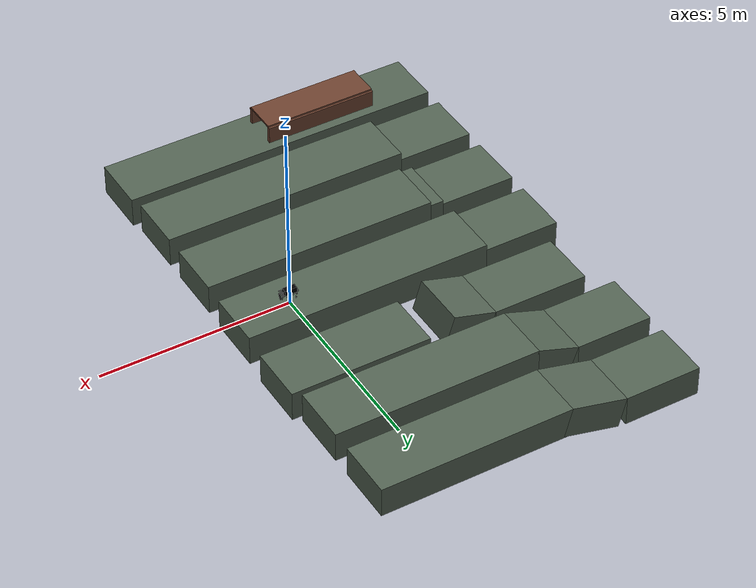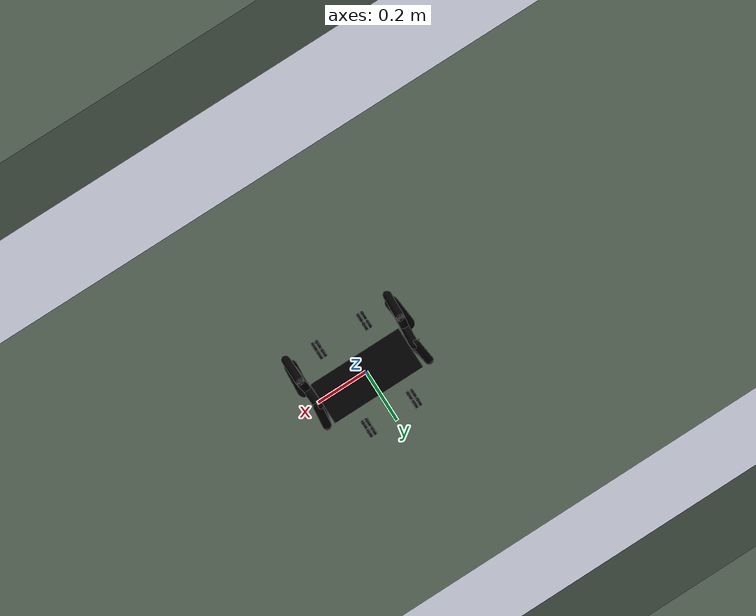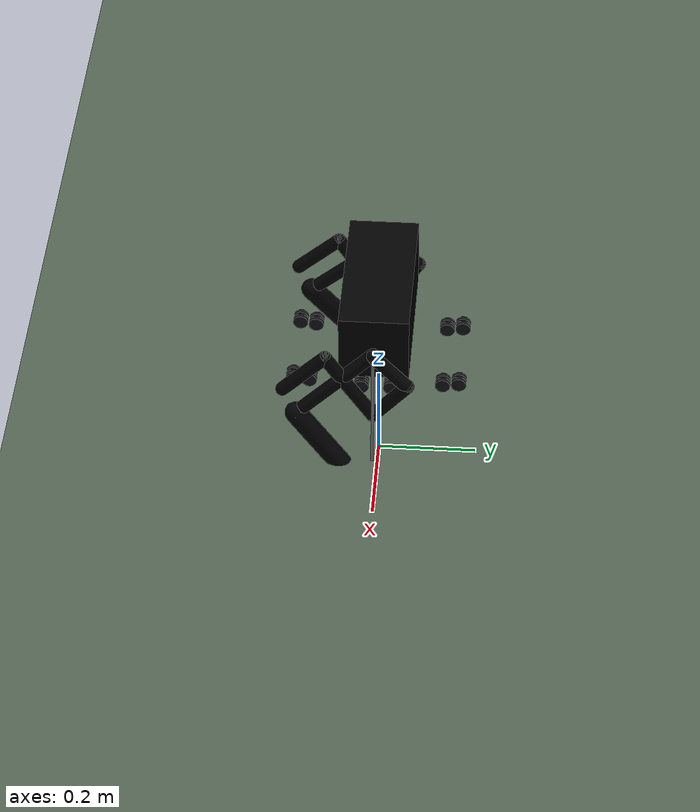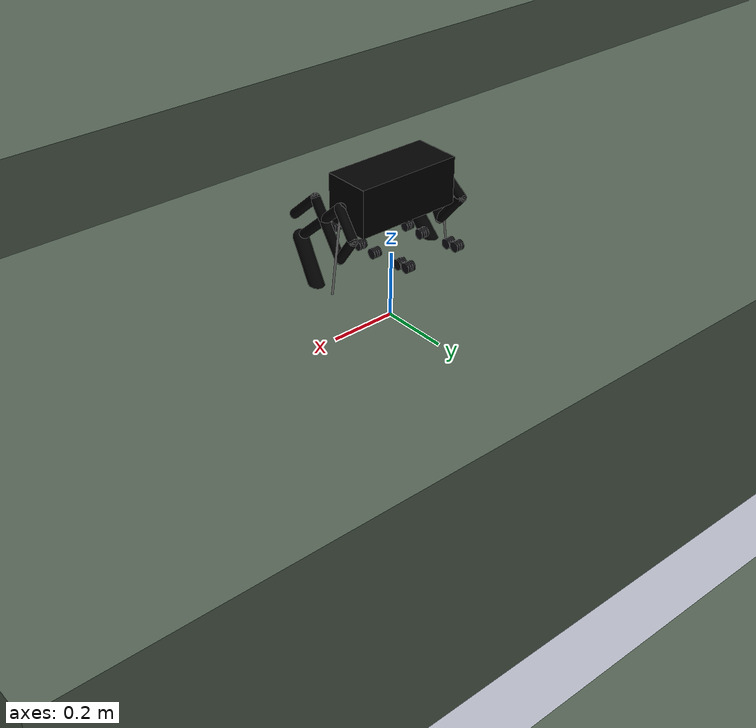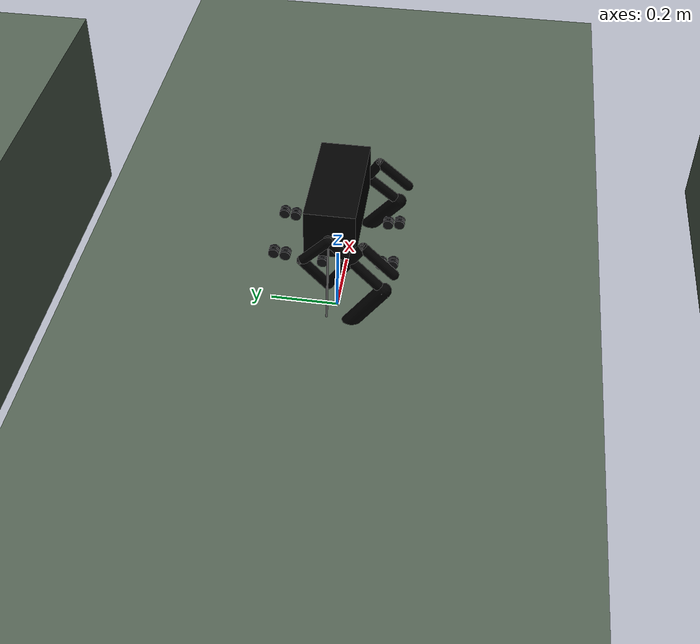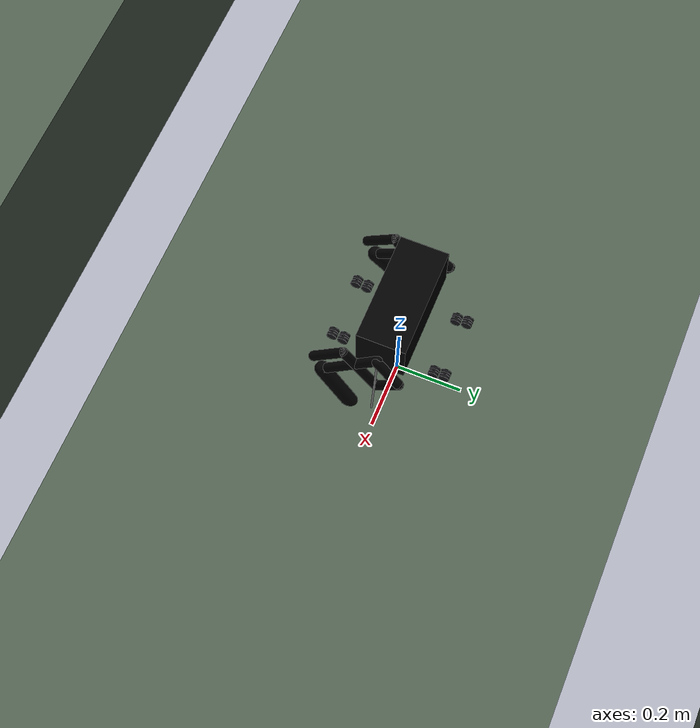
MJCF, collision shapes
<mujoco model="official_standard_ground">
  <compiler angle="radian" meshdir="meshes_mj" inertiafromgeom="auto" balanceinertia="true" />
  <statistic center="-4 0 0.35" extent="18" />
  <option timestep="0.001" gravity="0 0 -9.81" integrator="implicitfast" iterations="100" ls_iterations="50" />
  <visual>
    <headlight ambient="0.18 0.18 0.18" diffuse="0.40 0.40 0.40" specular="0.05 0.05 0.05" />
    <rgba haze="0.15 0.15 0.15 1" />
  </visual>
  <default>
    <joint damping="0.6" armature="0.01" />
    <geom margin="0.002" solimp="0.90 0.99 0.002" solref="0.008 1" />
  </default>
  <asset>
    <!-- Matte black ground material. -->
    <texture name="grid" type="2d" builtin="checker" width="512" height="512" rgb1=".1 .2 .3" rgb2=".2 .3 .4"/>
    <material name="ground_black_mat"  texture="grid" texrepeat="8 8" reflectance="0" />
    <mesh name="l_active_aluminum" file="l_active_aluminum.stl" scale="0.001 0.001 0.001" />
    <mesh name="l_long_aluminum" file="l_long_aluminum.stl" scale="0.001 0.001 0.001" />
    <mesh name="l_lower_aluminum" file="l_lower_aluminum.stl" scale="0.001 0.001 0.001" />
    <mesh name="l_node_aluminum" file="l_node_aluminum.stl" scale="0.001 0.001 0.001" />
    <mesh name="l_parallel_aluminum" file="l_parallel_aluminum.stl" scale="0.001 0.001 0.001" />
    <mesh name="l_upper_aluminum" file="l_upper_aluminum.stl" scale="0.001 0.001 0.001" />
    <mesh name="left_wheel_complete" file="left_wheel_complete.stl" scale="0.001 0.001 0.001" />
    <mesh name="r_active_aluminum" file="r_active_aluminum.stl" scale="0.001 0.001 0.001" />
    <mesh name="r_long_aluminum" file="r_long_aluminum.stl" scale="0.001 0.001 0.001" />
    <mesh name="r_lower_aluminum" file="r_lower_aluminum.stl" scale="0.001 0.001 0.001" />
    <mesh name="r_node_aluminum" file="r_node_aluminum.stl" scale="0.001 0.001 0.001" />
    <mesh name="r_parallel_aluminum" file="r_parallel_aluminum.stl" scale="0.001 0.001 0.001" />
    <mesh name="r_upper_aluminum" file="r_upper_aluminum.stl" scale="0.001 0.001 0.001" />
    <mesh name="right_wheel_complete" file="right_wheel_complete.stl" scale="0.001 0.001 0.001" />
    <mesh name="base_visual_aluminum_part1" file="base_visual_aluminum_part1.stl" scale="0.001 0.001 0.001" />
    <mesh name="base_visual_aluminum_part2" file="base_visual_aluminum_part2.stl" scale="0.001 0.001 0.001" />
    <mesh name="base_visual_aluminum_part3" file="base_visual_aluminum_part3.stl" scale="0.001 0.001 0.001" />
    <mesh name="base_visual_aluminum_part4" file="base_visual_aluminum_part4.stl" scale="0.001 0.001 0.001" />
    <mesh name="base_visual_aluminum_part5" file="base_visual_aluminum_part5.stl" scale="0.001 0.001 0.001" />
    <mesh name="base_visual_carbon" file="base_visual_carbon.stl" scale="0.001 0.001 0.001" />
    <mesh name="base_visual_plastic" file="base_visual_plastic.stl" scale="0.001 0.001 0.001" />
  </asset>
  <!--鎷撴墤缁撴瀯缁撴垚閾撅紝鍙涓や釜鍏宠妭鍋歝onnect-->
  <equality>
    <connect name="left_loop1" site1="left_node_site" site2="left_upper_site" solref="0.008 1" solimp="0.95 0.99 0.002 0.5 2" />
    <connect name="left_loop2" site1="left_parallel_site" site2="left_lower_site" solref="0.008 1" solimp="0.95 0.99 0.002 0.5 2" />
    <connect name="right_loop1" site1="right_node_site" site2="right_upper_site" solref="0.008 1" solimp="0.95 0.99 0.002 0.5 2" />
    <connect name="right_loop2" site1="right_parallel_site" site2="right_lower_site" solref="0.008 1" solimp="0.95 0.99 0.002 0.5 2" />
  </equality>
  <tendon>
    <!-- Passive spatial tendons measure hip-pivot to wheel-center leg length only. -->
    <spatial name="left_leg_length_tendon">
      <site site="left_leg_length_hip_site" />
      <site site="left_leg_length_wheel_site" />
    </spatial>
    <spatial name="right_leg_length_tendon">
      <site site="right_leg_length_hip_site" />
      <site site="right_leg_length_wheel_site" />
    </spatial>
  </tendon>
  <contact>
    <!-- Explicit self-contact pairs: wheel/leg travel is limited by the chassis. -->
    <pair name="left_wheel_to_base" geom1="base_collision" geom2="left_wheel_contact" />
    <pair name="right_wheel_to_base" geom1="base_collision" geom2="right_wheel_contact" />
    <pair name="left_leg_to_base" geom1="base_collision" geom2="left_lower_leg_collision" />
    <pair name="right_leg_to_base" geom1="base_collision" geom2="right_lower_leg_collision" />
    <pair name="left_long_to_base" geom1="base_collision" geom2="left_long_link_collision" />
    <pair name="right_long_to_base" geom1="base_collision" geom2="right_long_link_collision" />
    <pair name="left_active_to_lower" geom1="left_active_link_collision" geom2="left_lower_leg_collision" />
    <pair name="right_active_to_lower" geom1="right_active_link_collision" geom2="right_lower_leg_collision" />
    <pair name="left_long_to_lower" geom1="left_long_link_collision" geom2="left_lower_leg_collision" />
    <pair name="right_long_to_lower" geom1="right_long_link_collision" geom2="right_lower_leg_collision" />
    <pair name="left_long_to_upper" geom1="left_long_link_collision" geom2="left_upper_leg_collision" />
    <pair name="right_long_to_upper" geom1="right_long_link_collision" geom2="right_upper_leg_collision" />
    <pair name="left_parallel_to_upper" geom1="left_parallel_link_collision" geom2="left_upper_leg_collision" />
    <pair name="right_parallel_to_upper" geom1="right_parallel_link_collision" geom2="right_upper_leg_collision" />
  </contact>
  <worldbody>
    <light name="sun" pos="0 0 6" dir="0 0 -1" directional="true" diffuse="0.55 0.55 0.55" specular="0.05 0.05 0.05" />
    <!-- The inherited plane is used only during LQR trim projection. -->
    <geom name="ground" type="plane" pos="0 0 0" size="100.000 100.000 0.1" material="ground_black_mat" friction="1.100000000 0.050000000 0.010000000" contype="0" conaffinity="0" rgba="0 0 0 0" />
    <!-- support_* are collision surfaces; obstacle_* are non-support collisions. -->
    <!-- grade15: official ramp angle/height/run from geometry YAML. -->
    <geom name="support_grade15_lead" type="box" pos="-6.000000000 6.000000000 -0.400000000" size="1.000000000 0.750000000 0.400000000" friction="1.100000000 0.050000000 0.010000000" solref="0.150000000 1.000000000" contype="2" conaffinity="1" rgba="0.32 0.38 0.32 1" />
    <geom name="support_grade15_ramp" type="box" pos="-4.150062220 6.000000000 -0.186370331" size="0.772740661 0.750000000 0.400000000" friction="1.100000000 0.050000000 0.010000000" solref="0.150000000 1.000000000" contype="2" conaffinity="1" rgba="0.32 0.38 0.32 1" quat="0.991444861 0.000000000 -0.130526192 0.000000000" />
    <geom name="support_grade15_platform" type="box" pos="-1.007179677 6.000000000 0.000000000" size="2.500000000 0.750000000 0.400000000" friction="1.100000000 0.050000000 0.010000000" solref="0.150000000 1.000000000" contype="2" conaffinity="1" rgba="0.32 0.38 0.32 1" />
    <!-- grade20: official ramp angle/height/run from geometry YAML. -->
    <geom name="support_grade20_lead" type="box" pos="-6.000000000 4.000000000 -0.400000000" size="1.000000000 0.750000000 0.400000000" friction="1.100000000 0.050000000 0.010000000" solref="0.150000000 1.000000000" contype="2" conaffinity="1" rgba="0.32 0.38 0.32 1" />
    <geom name="support_grade20_ramp" type="box" pos="-4.313696335 4.000000000 -0.175877061" size="0.584761030 0.750000000 0.400000000" friction="1.100000000 0.050000000 0.010000000" solref="0.150000000 1.000000000" contype="2" conaffinity="1" rgba="0.32 0.38 0.32 1" quat="0.984807761 0.000000000 -0.173648132 0.000000000" />
    <geom name="support_grade20_platform" type="box" pos="-1.201008714 4.000000000 0.000000000" size="2.700000000 0.750000000 0.400000000" friction="1.100000000 0.050000000 0.010000000" solref="0.150000000 1.000000000" contype="2" conaffinity="1" rgba="0.32 0.38 0.32 1" />
    <!-- step150: official vertical rises; tread lengths are fixture-only. -->
    <geom name="support_step150_lead" type="box" pos="-6.000000000 0.000000000 -0.400000000" size="1.000000000 0.750000000 0.400000000" friction="1.100000000 0.050000000 0.010000000" solref="0.150000000 1.000000000" contype="2" conaffinity="1" rgba="0.32 0.38 0.32 1" />
    <geom name="support_step150_platform" type="box" pos="-1.750000000 0.000000000 -0.250000000" size="3.250000000 0.750000000 0.400000000" friction="1.100000000 0.050000000 0.010000000" solref="0.150000000 1.000000000" contype="2" conaffinity="1" rgba="0.32 0.38 0.32 1" />
    <!-- stair2x100: official vertical rises; tread lengths are fixture-only. -->
    <geom name="support_stair2x100_lead" type="box" pos="-6.000000000 -2.000000000 -0.400000000" size="1.000000000 0.750000000 0.400000000" friction="1.100000000 0.050000000 0.010000000" solref="0.150000000 1.000000000" contype="2" conaffinity="1" rgba="0.32 0.38 0.32 1" />
    <geom name="support_stair2x100_lower" type="box" pos="-4.825000000 -2.000000000 -0.300000000" size="0.175000000 0.750000000 0.400000000" friction="1.100000000 0.050000000 0.010000000" solref="0.150000000 1.000000000" contype="2" conaffinity="1" rgba="0.32 0.38 0.32 1" />
    <geom name="support_stair2x100_upper" type="box" pos="-1.575000000 -2.000000000 -0.200000000" size="3.075000000 0.750000000 0.400000000" friction="1.100000000 0.050000000 0.010000000" solref="0.150000000 1.000000000" contype="2" conaffinity="1" rgba="0.32 0.38 0.32 1" />
    <!-- step200_lab: official vertical rises; tread lengths are fixture-only. -->
    <geom name="support_step200_lab_lead" type="box" pos="-6.000000000 -4.000000000 -0.400000000" size="1.000000000 0.750000000 0.400000000" friction="1.100000000 0.050000000 0.010000000" solref="0.150000000 1.000000000" contype="2" conaffinity="1" rgba="0.32 0.38 0.32 1" />
    <geom name="support_step200_lab_platform" type="box" pos="-1.750000000 -4.000000000 -0.200000000" size="3.250000000 0.750000000 0.400000000" friction="1.100000000 0.050000000 0.010000000" solref="0.150000000 1.000000000" contype="2" conaffinity="1" rgba="0.32 0.38 0.32 1" />
    <!-- fly17: official ramp angle/height/run from geometry YAML. -->
    <geom name="support_fly17_lead" type="box" pos="-5.250000000 2.000000000 -0.400000000" size="1.250000000 0.750000000 0.400000000" friction="1.100000000 0.050000000 0.010000000" solref="0.150000000 1.000000000" contype="2" conaffinity="1" rgba="0.32 0.38 0.32 1" />
    <geom name="support_fly17_ramp" type="box" pos="-3.310652110 2.000000000 -0.207521902" size="0.598553133 0.750000000 0.400000000" friction="1.100000000 0.050000000 0.010000000" solref="0.150000000 1.000000000" contype="2" conaffinity="1" rgba="0.32 0.38 0.32 1" quat="0.989015863 0.000000000 -0.147809411 0.000000000" />
    <geom name="support_fly17_landing" type="box" pos="-0.355201584 2.000000000 -0.400000000" size="1.850000000 0.750000000 0.400000000" friction="1.100000000 0.050000000 0.010000000" solref="0.150000000 1.000000000" contype="2" conaffinity="1" rgba="0.32 0.38 0.32 1" />
    <!-- Doghole roof/walls are true collision obstacles, not hfield support. -->
    <geom name="support_doghole_floor" type="box" pos="-2.750000000 -6.000000000 -0.400000000" size="4.250000000 0.750000000 0.400000000" friction="1.100000000 0.050000000 0.010000000" solref="0.150000000 1.000000000" contype="2" conaffinity="1" rgba="0.32 0.38 0.32 1" />
    <geom name="obstacle_doghole_roof" type="box" pos="-4.000000000 -6.000000000 0.475000000" size="1.500000000 0.450000000 0.025000000" friction="1.100000000 0.050000000 0.010000000" solref="0.150000000 1.000000000" contype="2" conaffinity="5" rgba="0.42 0.25 0.18 1" margin="0"/>
    <geom name="obstacle_doghole_left_wall" type="box" pos="-4.000000000 -6.450000000 0.200000000" size="1.500000000 0.050000000 0.250000000" friction="1.100000000 0.050000000 0.010000000" solref="0.150000000 1.000000000" contype="2" conaffinity="5" rgba="0.42 0.25 0.18 1" margin="0"/>
    <geom name="obstacle_doghole_right_wall" type="box" pos="-4.000000000 -5.550000000 0.200000000" size="1.500000000 0.050000000 0.250000000" friction="1.100000000 0.050000000 0.010000000" solref="0.150000000 1.000000000" contype="2" conaffinity="5" rgba="0.42 0.25 0.18 1" margin="0"/>
    <camera name="official_follow_camera" mode="trackcom" target="robot" pos="-2.8 -2.8 1.6" fovy="55" />
    <body name="robot" pos="0 0 0.400" quat="0.70710678 0.70710678 0 0">
      <freejoint name="robot_free" />
      <!--6DOF瀹炵幇鐩稿鑵块儴杞姩-->
      <inertial pos="-0.0052237 0.1277931 -0.0055563" mass="16.2270647" fullinertia="0.3691035 0.5973735 0.3420952 -0.0174008 0.0042838 -0.0518328" />
      <!-- IMU reference frame, rigidly fixed at the robot body origin. -->
      <site name="imu_site" pos="0 0 0" size="0.006" rgba="0.10 0.65 1 0.45" />
      <!-- Hip-pivot endpoints for direct left/right leg-length measurement. -->
      <site name="left_leg_length_hip_site" pos="0.177500 0.000024 -0.000014" size="0.004" rgba="0.20 1 0.80 0.45" />
      <site name="right_leg_length_hip_site" pos="-0.177500 0.000024 -0.000014" size="0.004" rgba="1 0.55 0.20 0.45" />
      <!-- Dynamic collision group 1 only collides with the ground group 2. -->
      <geom name="base_contact" type="sphere" pos="0 0 0" size="0.045" mass="0" friction="0.80 0.005 0.0001" contype="4" conaffinity="0" rgba="0 0 0 0" />
      <!-- Chassis collision proxy used by explicit wheel/leg self-contact pairs. -->
      <geom name="base_collision" type="box" pos="0 0 0" size="0.160 0.070 0.070" mass="0" contype="4" conaffinity="0" rgba="0 0 0 0" margin="0"/>
      <geom type="mesh" mesh="base_visual_aluminum_part1" mass="0" rgba="0.74 0.76 0.79 1" contype="0" conaffinity="0" group="0" />
      <geom type="mesh" mesh="base_visual_aluminum_part2" mass="0" rgba="0.74 0.76 0.79 1" contype="0" conaffinity="0" group="0" />
      <geom type="mesh" mesh="base_visual_aluminum_part3" mass="0" rgba="0.74 0.76 0.79 1" contype="0" conaffinity="0" group="0" />
      <geom type="mesh" mesh="base_visual_aluminum_part4" mass="0" rgba="0.74 0.76 0.79 1" contype="0" conaffinity="0" group="0" />
      <geom type="mesh" mesh="base_visual_aluminum_part5" mass="0" rgba="0.74 0.76 0.79 1" contype="0" conaffinity="0" group="0" />
      <geom type="mesh" mesh="base_visual_carbon" mass="0" rgba="0.08 0.08 0.09 1" contype="0" conaffinity="0" group="0" />
      <geom type="mesh" mesh="base_visual_plastic" mass="0" rgba="0.16 0.16 0.18 1" contype="0" conaffinity="0" group="0" />
      <body name="left_active_link" pos="0.181750 0.000024 -0.000014">
        <joint name="left_active_link_pitch" type="hinge" axis="1 0 0" range="-2.60 2.60" damping="0.08" stiffness="0" springref="0" />
        <geom name="left_active_link_collision" type="capsule" fromto="0 0 0 0.011750 -0.064318 -0.069234" size="0.014" mass="0" contype="4" conaffinity="0" rgba="0 0 0 0" />
        <geom type="mesh" mesh="l_active_aluminum" density="594.0" rgba="0.74 0.76 0.79 1" contype="0" conaffinity="0" group="0" />
        <body name="left_long_link" pos="0.011750 -0.064318 -0.069234">
          <joint name="left_long_link_pitch" type="hinge" axis="1 0 0" range="-2.60 2.60" damping="0.08" stiffness="0" springref="0" />
          <geom name="left_long_link_collision" type="capsule" fromto="0 0 0 -0.012250 -0.088682 0.069231" size="0.014" mass="0" contype="4" conaffinity="0" rgba="0 0 0 0" />
          <geom type="mesh" mesh="l_long_aluminum" density="594.0" rgba="0.74 0.76 0.79 1" contype="0" conaffinity="0" group="0" />
          <body name="left_node_link" pos="-0.012250 -0.088682 0.069231">
            <joint name="left_node_link_pitch" type="hinge" axis="1 0 0" range="-2.60 2.60" damping="0.08" stiffness="0" springref="0" />
            <geom name="left_node_link_collision" type="capsule" fromto="0 0 0 0.005625 0.148520 0.094605" size="0.014" mass="0" contype="4" conaffinity="0" rgba="0 0 0 0" />
            <geom type="mesh" mesh="l_node_aluminum" pos="0.005625 0.148520 0.094605" density="594.0" rgba="0.74 0.76 0.79 1" contype="0" conaffinity="0" group="0" />
            <site name="left_node_site" pos="0.005250 0.088675 0.069231" size="0.006" rgba="0.10 1 0.10 1" />
            <body name="left_parallel_link" pos="0.005625 0.148520 0.094605">
              <joint name="left_parallel_link_pitch" type="hinge" axis="1 0 0" range="-2.60 2.60" damping="0.08" stiffness="0" springref="0" />
              <geom name="left_parallel_link_collision" type="capsule" fromto="0 0 0 0.006625 -0.078620 0.084618" size="0.014" mass="0" contype="4" conaffinity="0" rgba="0 0 0 0" />
              <geom type="mesh" mesh="l_parallel_aluminum" pos="0.006625 -0.078620 0.084618" density="594.0" rgba="0.74 0.76 0.79 1" contype="0" conaffinity="0" group="0" />
              <site name="left_parallel_site" pos="0.006625 -0.078620 0.084618" size="0.006" rgba="1 0.90 0 1" />
            </body>
          </body>
        </body>
      </body>
      <body name="left_upper_leg" pos="0.177500 0.000024 -0.000014">
        <joint name="left_hip_pitch" type="hinge" axis="-1 0 0" range="-3.10 3.10" damping="0.08" stiffness="0" springref="0" />
        <geom name="left_upper_leg_collision" type="capsule" fromto="0 0 0 0.017500 -0.142940 0.153840" size="0.014" mass="0" contype="4" conaffinity="0" rgba="0 0 0 0" />
        <geom type="mesh" mesh="l_upper_aluminum" density="594.0" rgba="0.74 0.76 0.79 1" contype="0" conaffinity="0" group="0" />
        <site name="left_upper_site" pos="0.009000 -0.064325 0.069228" size="0.009" rgba="1 0 1 0.55" />
        <body name="left_lower_leg" pos="0.017500 -0.142940 0.153840">
          <joint name="left_knee_pitch" type="hinge" axis="1 0 0" range="-2.50 2.50" damping="0.10" stiffness="0" springref="0" />
          <!-- Lower-leg sweep proxy for the explicit chassis contact pair. -->
          <geom name="left_lower_leg_collision" type="capsule" fromto="0 0 0 0.025489 -0.197014 -0.153817" size="0.022" mass="0" contype="4" conaffinity="0" rgba="0 0 0 0" />
          <geom type="mesh" mesh="l_lower_aluminum" density="594.0" rgba="0.74 0.76 0.79 1" contype="0" conaffinity="0" group="0" />
          <site name="left_lower_site" pos="-0.001500 0.059840 0.025380" size="0.009" rgba="1 0.25 0.10 0.55" />
          <body name="left_wheel" pos="0.025489 -0.197014 -0.153817">
            <joint name="left_wheel_spin" type="hinge" axis="1 0 0" damping="0.01" />
            <site name="left_leg_length_wheel_site" pos="0 0 0" size="0.004" rgba="0.20 1 0.80 0.45" />
            <geom type="mesh" mesh="left_wheel_complete" density="594.0" rgba="0.74 0.76 0.79 1" contype="0" conaffinity="0" group="0" />
            <geom name="left_wheel_contact" type="cylinder" size="0.060 0.0165" quat="0.70710678 0 0.70710678 0" mass="0" friction="1.10 0.005 0.0001" condim="3" contype="1" conaffinity="2" rgba="0 0 0 0" />
          </body>
        </body>
      </body>
      <body name="right_active_link" pos="-0.181750 0.000024 -0.000014">
        <joint name="right_active_link_pitch" type="hinge" axis="1 0 0" range="-2.60 2.60" damping="0.08" stiffness="0" springref="0" />
        <geom name="right_active_link_collision" type="capsule" fromto="0 0 0 -0.011750 -0.064318 -0.069234" size="0.014" mass="0" contype="4" conaffinity="0" rgba="0 0 0 0" />
        <geom type="mesh" mesh="r_active_aluminum" density="594.0" rgba="0.74 0.76 0.79 1" contype="0" conaffinity="0" group="0" />
        <body name="right_long_link" pos="-0.011750 -0.064318 -0.069234">
          <joint name="right_long_link_pitch" type="hinge" axis="-1 0 0" range="-2.60 2.60" damping="0.08" stiffness="0" springref="0" />
          <geom name="right_long_link_collision" type="capsule" fromto="0 0 0 0.012250 -0.088682 0.069231" size="0.014" mass="0" contype="4" conaffinity="0" rgba="0 0 0 0" />
          <geom type="mesh" mesh="r_long_aluminum" density="594.0" rgba="0.74 0.76 0.79 1" contype="0" conaffinity="0" group="0" />
          <body name="right_node_link" pos="0.012250 -0.088682 0.069231">
            <joint name="right_node_link_pitch" type="hinge" axis="-1 0 0" range="-2.60 2.60" damping="0.08" stiffness="0" springref="0" />
            <geom name="right_node_link_collision" type="capsule" fromto="0 0 0 -0.005625 0.148520 0.094605" size="0.014" mass="0" contype="4" conaffinity="0" rgba="0 0 0 0" />
            <geom type="mesh" mesh="r_node_aluminum" pos="-0.005625 0.148520 0.094605" density="594.0" rgba="0.74 0.76 0.79 1" contype="0" conaffinity="0" group="0" />
            <site name="right_node_site" pos="-0.005250 0.088675 0.069231" size="0.006" rgba="1 0.90 0 1" />
            <body name="right_parallel_link" pos="-0.005625 0.148520 0.094605">
              <joint name="right_parallel_link_pitch" type="hinge" axis="-1 0 0" range="-2.60 2.60" damping="0.08" stiffness="0" springref="0" />
              <geom name="right_parallel_link_collision" type="capsule" fromto="0 0 0 -0.006625 -0.078620 0.084618" size="0.014" mass="0" contype="4" conaffinity="0" rgba="0 0 0 0" />
              <geom type="mesh" mesh="r_parallel_aluminum" pos="-0.006625 -0.078620 0.084618" density="594.0" rgba="0.74 0.76 0.79 1" contype="0" conaffinity="0" group="0" />
              <site name="right_parallel_site" pos="-0.006625 -0.078620 0.084618" size="0.006" rgba="0.10 1 0 1" />
            </body>
          </body>
        </body>
      </body>
      <body name="right_upper_leg" pos="-0.177500 0.000024 -0.000014">
        <joint name="right_hip_pitch" type="hinge" axis="1 0 0" range="-3.10 3.10" damping="0.08" stiffness="0" springref="0" />
        <geom name="right_upper_leg_collision" type="capsule" fromto="0 0 0 -0.017500 -0.142940 0.153840" size="0.014" mass="0" contype="4" conaffinity="0" rgba="0 0 0 0" />
        <geom type="mesh" mesh="r_upper_aluminum" density="594.0" rgba="0.74 0.76 0.79 1" contype="0" conaffinity="0" group="0" />
        <site name="right_upper_site" pos="-0.009000 -0.064325 0.069228" size="0.009" rgba="1 0 1 0.55" />
        <body name="right_lower_leg" pos="-0.017500 -0.142940 0.153840">
          <joint name="right_knee_pitch" type="hinge" axis="-1 0 0" range="-2.50 2.50" damping="0.10" stiffness="0" springref="0" />
          <!-- Lower-leg sweep proxy for the explicit chassis contact pair. -->
          <geom name="right_lower_leg_collision" type="capsule" fromto="0 0 0 -0.025511 -0.197077 -0.153795" size="0.022" mass="0" contype="4" conaffinity="0" rgba="0 0 0 0" />
          <geom type="mesh" mesh="r_lower_aluminum" density="594.0" rgba="0.74 0.76 0.79 1" contype="0" conaffinity="0" group="0" />
          <site name="right_lower_site" pos="0.001500 0.059840 0.025380" size="0.009" rgba="1 0.25 0.10 0.55" />
          <body name="right_wheel" pos="-0.025511 -0.197077 -0.153795">
            <joint name="right_wheel_spin" type="hinge" axis="1 0 0" damping="0.01" />
            <site name="right_leg_length_wheel_site" pos="0 0 0" size="0.004" rgba="1 0.55 0.20 0.45" />
            <geom type="mesh" mesh="right_wheel_complete" density="594.0" rgba="0.74 0.76 0.79 1" contype="0" conaffinity="0" group="0" />
            <geom name="right_wheel_contact" type="cylinder" size="0.060 0.0165" quat="0.70710678 0 0.70710678 0" mass="0" friction="1.10 0.005 0.0001" condim="3" contype="1" conaffinity="2" rgba="0 0 0 0" />
          </body>
        </body>
      </body>
      <!-- GUIDE_WHEEL_TRAINING_BEGIN -->
      <!-- Passive lower 30x9 mm guide rollers; no actuator or public sensor. -->
      <body name="guide_wheel_lower_right_01" pos="-0.0950001 -0.1399738 -0.1346828">
        <joint name="guide_wheel_lower_right_01_spin" type="hinge" axis="1.0000000 0.0000000 0.0000000" damping="0.0001500" armature="0.0000000" />
        <site name="guide_wheel_lower_right_01_site" pos="0 0 0" size="0.004" rgba="0.0700000 0.0700000 0.0800000 1.0000000" />
        <geom name="guide_wheel_lower_right_01_contact" type="cylinder" size="0.0150000 0.0045000" quat="0.7071068 0.0000000 0.7071068 0.0000000" density="2588.0000000" friction="1.1000000 0.0050000 0.0001000" condim="3" contype="1" conaffinity="2" rgba="0.0700000 0.0700000 0.0800000 1.0000000" />
      </body>
      <body name="guide_wheel_lower_right_02" pos="-0.0800001 -0.1357210 -0.1670853">
        <joint name="guide_wheel_lower_right_02_spin" type="hinge" axis="1.0000000 0.0000000 0.0000000" damping="0.0001500" armature="0.0000000" />
        <site name="guide_wheel_lower_right_02_site" pos="0 0 0" size="0.004" rgba="0.0700000 0.0700000 0.0800000 1.0000000" />
        <geom name="guide_wheel_lower_right_02_contact" type="cylinder" size="0.0150000 0.0045000" quat="0.7071068 0.0000000 0.7071068 0.0000000" density="2588.0000000" friction="1.1000000 0.0050000 0.0001000" condim="3" contype="1" conaffinity="2" rgba="0.0700000 0.0700000 0.0800000 1.0000000" />
      </body>
      <body name="guide_wheel_lower_right_03" pos="-0.0950001 -0.1357210 -0.1669864">
        <joint name="guide_wheel_lower_right_03_spin" type="hinge" axis="1.0000000 0.0000000 0.0000000" damping="0.0001500" armature="0.0000000" />
        <site name="guide_wheel_lower_right_03_site" pos="0 0 0" size="0.004" rgba="0.0700000 0.0700000 0.0800000 1.0000000" />
        <geom name="guide_wheel_lower_right_03_contact" type="cylinder" size="0.0150000 0.0045000" quat="0.7071068 0.0000000 0.7071068 0.0000000" density="2588.0000000" friction="1.1000000 0.0050000 0.0001000" condim="3" contype="1" conaffinity="2" rgba="0.0700000 0.0700000 0.0800000 1.0000000" />
      </body>
      <body name="guide_wheel_lower_right_04" pos="-0.0800001 -0.1400231 -0.1347281">
        <joint name="guide_wheel_lower_right_04_spin" type="hinge" axis="1.0000000 0.0000000 0.0000000" damping="0.0001500" armature="0.0000000" />
        <site name="guide_wheel_lower_right_04_site" pos="0 0 0" size="0.004" rgba="0.0700000 0.0700000 0.0800000 1.0000000" />
        <geom name="guide_wheel_lower_right_04_contact" type="cylinder" size="0.0150000 0.0045000" quat="0.7071068 0.0000000 0.7071068 0.0000000" density="2588.0000000" friction="1.1000000 0.0050000 0.0001000" condim="3" contype="1" conaffinity="2" rgba="0.0700000 0.0700000 0.0800000 1.0000000" />
      </body>
      <body name="guide_wheel_lower_left_01" pos="0.0949999 -0.1357210 -0.1669864">
        <joint name="guide_wheel_lower_left_01_spin" type="hinge" axis="1.0000000 0.0000000 0.0000000" damping="0.0001500" armature="0.0000000" />
        <site name="guide_wheel_lower_left_01_site" pos="0 0 0" size="0.004" rgba="0.0700000 0.0700000 0.0800000 1.0000000" />
        <geom name="guide_wheel_lower_left_01_contact" type="cylinder" size="0.0150000 0.0045000" quat="0.7071068 0.0000000 0.7071068 0.0000000" density="2588.0000000" friction="1.1000000 0.0050000 0.0001000" condim="3" contype="1" conaffinity="2" rgba="0.0700000 0.0700000 0.0800000 1.0000000" />
      </body>
      <body name="guide_wheel_lower_left_02" pos="0.0799999 -0.1357210 -0.1670853">
        <joint name="guide_wheel_lower_left_02_spin" type="hinge" axis="1.0000000 0.0000000 0.0000000" damping="0.0001500" armature="0.0000000" />
        <site name="guide_wheel_lower_left_02_site" pos="0 0 0" size="0.004" rgba="0.0700000 0.0700000 0.0800000 1.0000000" />
        <geom name="guide_wheel_lower_left_02_contact" type="cylinder" size="0.0150000 0.0045000" quat="0.7071068 0.0000000 0.7071068 0.0000000" density="2588.0000000" friction="1.1000000 0.0050000 0.0001000" condim="3" contype="1" conaffinity="2" rgba="0.0700000 0.0700000 0.0800000 1.0000000" />
      </body>
      <body name="guide_wheel_lower_left_03" pos="0.0949999 -0.1399738 -0.1346828">
        <joint name="guide_wheel_lower_left_03_spin" type="hinge" axis="1.0000000 0.0000000 0.0000000" damping="0.0001500" armature="0.0000000" />
        <site name="guide_wheel_lower_left_03_site" pos="0 0 0" size="0.004" rgba="0.0700000 0.0700000 0.0800000 1.0000000" />
        <geom name="guide_wheel_lower_left_03_contact" type="cylinder" size="0.0150000 0.0045000" quat="0.7071068 0.0000000 0.7071068 0.0000000" density="2588.0000000" friction="1.1000000 0.0050000 0.0001000" condim="3" contype="1" conaffinity="2" rgba="0.0700000 0.0700000 0.0800000 1.0000000" />
      </body>
      <body name="guide_wheel_lower_left_04" pos="0.0799999 -0.1400231 -0.1347281">
        <joint name="guide_wheel_lower_left_04_spin" type="hinge" axis="1.0000000 0.0000000 0.0000000" damping="0.0001500" armature="0.0000000" />
        <site name="guide_wheel_lower_left_04_site" pos="0 0 0" size="0.004" rgba="0.0700000 0.0700000 0.0800000 1.0000000" />
        <geom name="guide_wheel_lower_left_04_contact" type="cylinder" size="0.0150000 0.0045000" quat="0.7071068 0.0000000 0.7071068 0.0000000" density="2588.0000000" friction="1.1000000 0.0050000 0.0001000" condim="3" contype="1" conaffinity="2" rgba="0.0700000 0.0700000 0.0800000 1.0000000" />
      </body>
      <body name="guide_wheel_lower_left_05" pos="0.0949999 -0.1399738 0.1346520">
        <joint name="guide_wheel_lower_left_05_spin" type="hinge" axis="1.0000000 0.0000000 0.0000000" damping="0.0001500" armature="0.0000000" />
        <site name="guide_wheel_lower_left_05_site" pos="0 0 0" size="0.004" rgba="0.0700000 0.0700000 0.0800000 1.0000000" />
        <geom name="guide_wheel_lower_left_05_contact" type="cylinder" size="0.0150000 0.0045000" quat="0.7071068 0.0000000 0.7071068 0.0000000" density="2588.0000000" friction="1.1000000 0.0050000 0.0001000" condim="3" contype="1" conaffinity="2" rgba="0.0700000 0.0700000 0.0800000 1.0000000" />
      </body>
      <body name="guide_wheel_lower_left_06" pos="0.0949999 -0.1357210 0.1669556">
        <joint name="guide_wheel_lower_left_06_spin" type="hinge" axis="1.0000000 0.0000000 0.0000000" damping="0.0001500" armature="0.0000000" />
        <site name="guide_wheel_lower_left_06_site" pos="0 0 0" size="0.004" rgba="0.0700000 0.0700000 0.0800000 1.0000000" />
        <geom name="guide_wheel_lower_left_06_contact" type="cylinder" size="0.0150000 0.0045000" quat="0.7071068 0.0000000 0.7071068 0.0000000" density="2588.0000000" friction="1.1000000 0.0050000 0.0001000" condim="3" contype="1" conaffinity="2" rgba="0.0700000 0.0700000 0.0800000 1.0000000" />
      </body>
      <body name="guide_wheel_lower_left_07" pos="0.0799999 -0.1357210 0.1670545">
        <joint name="guide_wheel_lower_left_07_spin" type="hinge" axis="1.0000000 0.0000000 0.0000000" damping="0.0001500" armature="0.0000000" />
        <site name="guide_wheel_lower_left_07_site" pos="0 0 0" size="0.004" rgba="0.0700000 0.0700000 0.0800000 1.0000000" />
        <geom name="guide_wheel_lower_left_07_contact" type="cylinder" size="0.0150000 0.0045000" quat="0.7071068 0.0000000 0.7071068 0.0000000" density="2588.0000000" friction="1.1000000 0.0050000 0.0001000" condim="3" contype="1" conaffinity="2" rgba="0.0700000 0.0700000 0.0800000 1.0000000" />
      </body>
      <body name="guide_wheel_lower_left_08" pos="0.0799999 -0.1400231 0.1346973">
        <joint name="guide_wheel_lower_left_08_spin" type="hinge" axis="1.0000000 0.0000000 0.0000000" damping="0.0001500" armature="0.0000000" />
        <site name="guide_wheel_lower_left_08_site" pos="0 0 0" size="0.004" rgba="0.0700000 0.0700000 0.0800000 1.0000000" />
        <geom name="guide_wheel_lower_left_08_contact" type="cylinder" size="0.0150000 0.0045000" quat="0.7071068 0.0000000 0.7071068 0.0000000" density="2588.0000000" friction="1.1000000 0.0050000 0.0001000" condim="3" contype="1" conaffinity="2" rgba="0.0700000 0.0700000 0.0800000 1.0000000" />
      </body>
      <body name="guide_wheel_lower_right_05" pos="-0.0800001 -0.1357210 0.1670545">
        <joint name="guide_wheel_lower_right_05_spin" type="hinge" axis="1.0000000 0.0000000 0.0000000" damping="0.0001500" armature="0.0000000" />
        <site name="guide_wheel_lower_right_05_site" pos="0 0 0" size="0.004" rgba="0.0700000 0.0700000 0.0800000 1.0000000" />
        <geom name="guide_wheel_lower_right_05_contact" type="cylinder" size="0.0150000 0.0045000" quat="0.7071068 0.0000000 0.7071068 0.0000000" density="2588.0000000" friction="1.1000000 0.0050000 0.0001000" condim="3" contype="1" conaffinity="2" rgba="0.0700000 0.0700000 0.0800000 1.0000000" />
      </body>
      <body name="guide_wheel_lower_right_06" pos="-0.0950001 -0.1357210 0.1669556">
        <joint name="guide_wheel_lower_right_06_spin" type="hinge" axis="1.0000000 0.0000000 0.0000000" damping="0.0001500" armature="0.0000000" />
        <site name="guide_wheel_lower_right_06_site" pos="0 0 0" size="0.004" rgba="0.0700000 0.0700000 0.0800000 1.0000000" />
        <geom name="guide_wheel_lower_right_06_contact" type="cylinder" size="0.0150000 0.0045000" quat="0.7071068 0.0000000 0.7071068 0.0000000" density="2588.0000000" friction="1.1000000 0.0050000 0.0001000" condim="3" contype="1" conaffinity="2" rgba="0.0700000 0.0700000 0.0800000 1.0000000" />
      </body>
      <body name="guide_wheel_lower_right_07" pos="-0.0800001 -0.1400231 0.1346973">
        <joint name="guide_wheel_lower_right_07_spin" type="hinge" axis="1.0000000 0.0000000 0.0000000" damping="0.0001500" armature="0.0000000" />
        <site name="guide_wheel_lower_right_07_site" pos="0 0 0" size="0.004" rgba="0.0700000 0.0700000 0.0800000 1.0000000" />
        <geom name="guide_wheel_lower_right_07_contact" type="cylinder" size="0.0150000 0.0045000" quat="0.7071068 0.0000000 0.7071068 0.0000000" density="2588.0000000" friction="1.1000000 0.0050000 0.0001000" condim="3" contype="1" conaffinity="2" rgba="0.0700000 0.0700000 0.0800000 1.0000000" />
      </body>
      <body name="guide_wheel_lower_right_08" pos="-0.0950001 -0.1399738 0.1346520">
        <joint name="guide_wheel_lower_right_08_spin" type="hinge" axis="1.0000000 0.0000000 0.0000000" damping="0.0001500" armature="0.0000000" />
        <site name="guide_wheel_lower_right_08_site" pos="0 0 0" size="0.004" rgba="0.0700000 0.0700000 0.0800000 1.0000000" />
        <geom name="guide_wheel_lower_right_08_contact" type="cylinder" size="0.0150000 0.0045000" quat="0.7071068 0.0000000 0.7071068 0.0000000" density="2588.0000000" friction="1.1000000 0.0050000 0.0001000" condim="3" contype="1" conaffinity="2" rgba="0.0700000 0.0700000 0.0800000 1.0000000" />
      </body>
      <body name="guide_wheel_lower_left_09" pos="0.0779999 -0.1534738 -0.0300649">
        <joint name="guide_wheel_lower_left_09_spin" type="hinge" axis="1.0000000 0.0000000 0.0000000" damping="0.0001500" armature="0.0000000" />
        <site name="guide_wheel_lower_left_09_site" pos="0 0 0" size="0.004" rgba="0.0700000 0.0700000 0.0800000 1.0000000" />
        <geom name="guide_wheel_lower_left_09_contact" type="cylinder" size="0.0150000 0.0045000" quat="0.7071068 0.0000000 0.7071068 0.0000000" density="2588.0000000" friction="1.1000000 0.0050000 0.0001000" condim="3" contype="1" conaffinity="2" rgba="0.0700000 0.0700000 0.0800000 1.0000000" />
      </body>
      <body name="guide_wheel_lower_left_10" pos="0.0929999 -0.1534738 -0.0299659">
        <joint name="guide_wheel_lower_left_10_spin" type="hinge" axis="1.0000000 0.0000000 0.0000000" damping="0.0001500" armature="0.0000000" />
        <site name="guide_wheel_lower_left_10_site" pos="0 0 0" size="0.004" rgba="0.0700000 0.0700000 0.0800000 1.0000000" />
        <geom name="guide_wheel_lower_left_10_contact" type="cylinder" size="0.0150000 0.0045000" quat="0.7071068 0.0000000 0.7071068 0.0000000" density="2588.0000000" friction="1.1000000 0.0050000 0.0001000" condim="3" contype="1" conaffinity="2" rgba="0.0700000 0.0700000 0.0800000 1.0000000" />
      </body>
      <body name="guide_wheel_lower_left_11" pos="0.0929999 -0.1534738 0.0300341">
        <joint name="guide_wheel_lower_left_11_spin" type="hinge" axis="1.0000000 0.0000000 0.0000000" damping="0.0001500" armature="0.0000000" />
        <site name="guide_wheel_lower_left_11_site" pos="0 0 0" size="0.004" rgba="0.0700000 0.0700000 0.0800000 1.0000000" />
        <geom name="guide_wheel_lower_left_11_contact" type="cylinder" size="0.0150000 0.0045000" quat="0.7071068 0.0000000 0.7071068 0.0000000" density="2588.0000000" friction="1.1000000 0.0050000 0.0001000" condim="3" contype="1" conaffinity="2" rgba="0.0700000 0.0700000 0.0800000 1.0000000" />
      </body>
      <body name="guide_wheel_lower_left_12" pos="0.0779999 -0.1534738 0.0299351">
        <joint name="guide_wheel_lower_left_12_spin" type="hinge" axis="1.0000000 0.0000000 0.0000000" damping="0.0001500" armature="0.0000000" />
        <site name="guide_wheel_lower_left_12_site" pos="0 0 0" size="0.004" rgba="0.0700000 0.0700000 0.0800000 1.0000000" />
        <geom name="guide_wheel_lower_left_12_contact" type="cylinder" size="0.0150000 0.0045000" quat="0.7071068 0.0000000 0.7071068 0.0000000" density="2588.0000000" friction="1.1000000 0.0050000 0.0001000" condim="3" contype="1" conaffinity="2" rgba="0.0700000 0.0700000 0.0800000 1.0000000" />
      </body>
      <body name="guide_wheel_lower_right_09" pos="-0.0930001 -0.1534738 0.0300341">
        <joint name="guide_wheel_lower_right_09_spin" type="hinge" axis="1.0000000 0.0000000 0.0000000" damping="0.0001500" armature="0.0000000" />
        <site name="guide_wheel_lower_right_09_site" pos="0 0 0" size="0.004" rgba="0.0700000 0.0700000 0.0800000 1.0000000" />
        <geom name="guide_wheel_lower_right_09_contact" type="cylinder" size="0.0150000 0.0045000" quat="0.7071068 0.0000000 0.7071068 0.0000000" density="2588.0000000" friction="1.1000000 0.0050000 0.0001000" condim="3" contype="1" conaffinity="2" rgba="0.0700000 0.0700000 0.0800000 1.0000000" />
      </body>
      <body name="guide_wheel_lower_right_10" pos="-0.0780001 -0.1534738 0.0299351">
        <joint name="guide_wheel_lower_right_10_spin" type="hinge" axis="1.0000000 0.0000000 0.0000000" damping="0.0001500" armature="0.0000000" />
        <site name="guide_wheel_lower_right_10_site" pos="0 0 0" size="0.004" rgba="0.0700000 0.0700000 0.0800000 1.0000000" />
        <geom name="guide_wheel_lower_right_10_contact" type="cylinder" size="0.0150000 0.0045000" quat="0.7071068 0.0000000 0.7071068 0.0000000" density="2588.0000000" friction="1.1000000 0.0050000 0.0001000" condim="3" contype="1" conaffinity="2" rgba="0.0700000 0.0700000 0.0800000 1.0000000" />
      </body>
      <body name="guide_wheel_lower_right_11" pos="-0.0930001 -0.1534738 -0.0299659">
        <joint name="guide_wheel_lower_right_11_spin" type="hinge" axis="1.0000000 0.0000000 0.0000000" damping="0.0001500" armature="0.0000000" />
        <site name="guide_wheel_lower_right_11_site" pos="0 0 0" size="0.004" rgba="0.0700000 0.0700000 0.0800000 1.0000000" />
        <geom name="guide_wheel_lower_right_11_contact" type="cylinder" size="0.0150000 0.0045000" quat="0.7071068 0.0000000 0.7071068 0.0000000" density="2588.0000000" friction="1.1000000 0.0050000 0.0001000" condim="3" contype="1" conaffinity="2" rgba="0.0700000 0.0700000 0.0800000 1.0000000" />
      </body>
      <body name="guide_wheel_lower_right_12" pos="-0.0780001 -0.1534738 -0.0300649">
        <joint name="guide_wheel_lower_right_12_spin" type="hinge" axis="1.0000000 0.0000000 0.0000000" damping="0.0001500" armature="0.0000000" />
        <site name="guide_wheel_lower_right_12_site" pos="0 0 0" size="0.004" rgba="0.0700000 0.0700000 0.0800000 1.0000000" />
        <geom name="guide_wheel_lower_right_12_contact" type="cylinder" size="0.0150000 0.0045000" quat="0.7071068 0.0000000 0.7071068 0.0000000" density="2588.0000000" friction="1.1000000 0.0050000 0.0001000" condim="3" contype="1" conaffinity="2" rgba="0.0700000 0.0700000 0.0800000 1.0000000" />
      </body>
      <!-- GUIDE_WHEEL_TRAINING_END -->
    </body>
  </worldbody>
  <sensor>
    <!-- World-frame horizontal displacement: use X/Y components. -->
    <framepos name="world_horizontal_position_xy" objtype="body" objname="robot" />
    <!-- World-frame horizontal velocity: use X/Y components. -->
    <framelinvel name="world_horizontal_velocity_xy" objtype="body" objname="robot" />

    <!-- Left/right wheel rotation about each wheel's local normal axis and derivative. -->
    <jointpos name="left_wheel_angle" joint="left_wheel_spin" />
    <jointvel name="left_wheel_angular_velocity" joint="left_wheel_spin" />
    <jointpos name="right_wheel_angle" joint="right_wheel_spin" />
    <jointvel name="right_wheel_angular_velocity" joint="right_wheel_spin" />

    <!-- Left/right leg tilt about each hip's local normal axis and derivative. -->
    <jointpos name="left_leg_tilt_angle" joint="left_hip_pitch" />
    <jointvel name="left_leg_tilt_angular_velocity" joint="left_hip_pitch" />
    <jointpos name="right_leg_tilt_angle" joint="right_hip_pitch" />
    <jointvel name="right_leg_tilt_angular_velocity" joint="right_hip_pitch" />

    <!-- Direct hip-pivot to wheel-center leg length and its derivative. -->
    <tendonpos name="left_leg_length" tendon="left_leg_length_tendon" />
    <tendonvel name="left_leg_length_velocity" tendon="left_leg_length_tendon" />
    <tendonpos name="right_leg_length" tendon="right_leg_length_tendon" />
    <tendonvel name="right_leg_length_velocity" tendon="right_leg_length_tendon" />

    <!-- Body attitude in the world frame; derive yaw and pitch from this quaternion. -->
    <framequat name="world_body_orientation_quat" objtype="body" objname="robot" />
    <!-- Body angular velocity; combine with the quaternion to obtain world yaw/pitch rates. -->
    <frameangvel name="body_angular_velocity" objtype="body" objname="robot" />

    <!-- Body-mounted IMU outputs in the IMU's local coordinate frame. -->
    <gyro name="imu_gyroscope" site="imu_site" />
    <accelerometer name="imu_linear_accelerometer" site="imu_site" />
    <velocimeter name="imu_linear_velocity" site="imu_site" />

    <!-- Left-leg dual hip-motor output torque sensors. -->
    <actuatorfrc name="left_hip_motor_torque" actuator="left_hip_motor" />
    <actuatorfrc name="left_active_hip_motor_torque" actuator="left_active_hip_motor" />
    <actuatorfrc name="left_wheel_motor_torque" actuator="left_wheel_motor" />

    <!-- Right-leg dual hip-motor output torque sensors. -->
    <actuatorfrc name="right_hip_motor_torque" actuator="right_hip_motor" />
    <actuatorfrc name="right_active_hip_motor_torque" actuator="right_active_hip_motor" />
    <actuatorfrc name="right_wheel_motor_torque" actuator="right_wheel_motor" />
  </sensor>
  <actuator>
    <!-- Each leg has two DM-J8009P-2EC hip motors; knee links are passive. -->
    <motor name="left_hip_motor" joint="left_hip_pitch" gear="1" ctrllimited="true" ctrlrange="-40 40" forcelimited="true" forcerange="-40 40" />
    <motor name="left_active_hip_motor" joint="left_active_link_pitch" gear="1" ctrllimited="true" ctrlrange="-40 40" forcelimited="true" forcerange="-40 40" />
    <!-- RM3508: motor-shaft command in Nm; output torque is multiplied by 268/17. -->
    <motor name="left_wheel_motor" joint="left_wheel_spin" gear="15.7647058824" ctrllimited="true" ctrlrange="-3 3" forcelimited="true" forcerange="-3 3" />
    <motor name="right_hip_motor" joint="right_hip_pitch" gear="1" ctrllimited="true" ctrlrange="-40 40" forcelimited="true" forcerange="-40 40" />
    <motor name="right_active_hip_motor" joint="right_active_link_pitch" gear="1" ctrllimited="true" ctrlrange="-40 40" forcelimited="true" forcerange="-40 40" />
    <motor name="right_wheel_motor" joint="right_wheel_spin" gear="15.7647058824" ctrllimited="true" ctrlrange="-3 3" forcelimited="true" forcerange="-3 3" />
  </actuator>
</mujoco>
